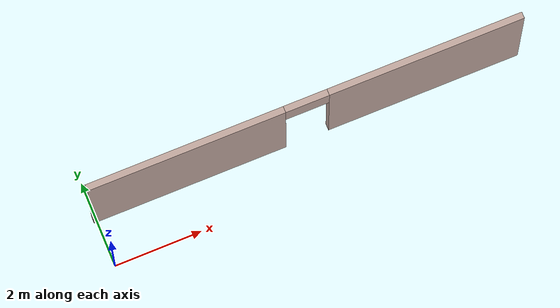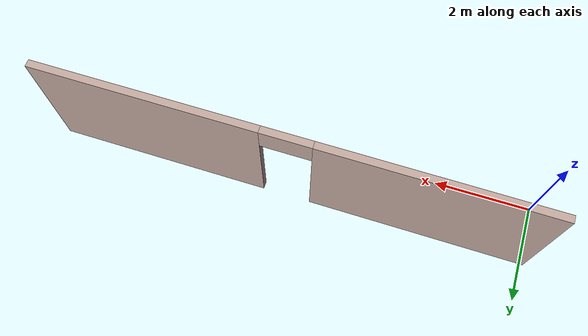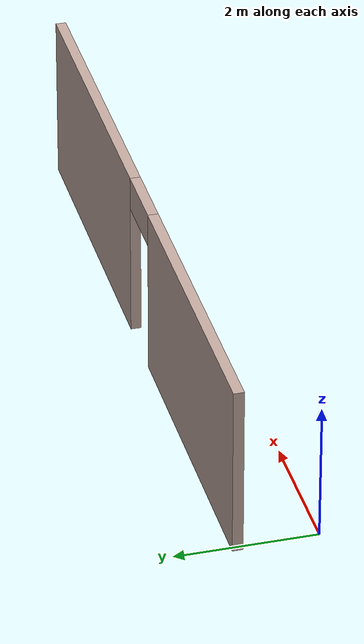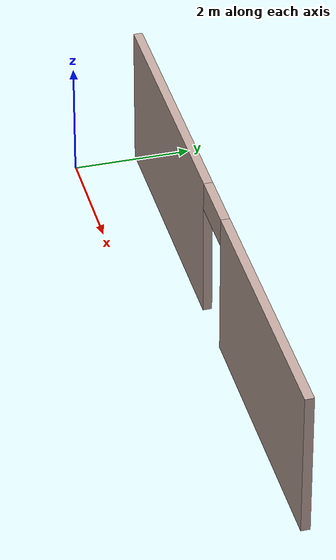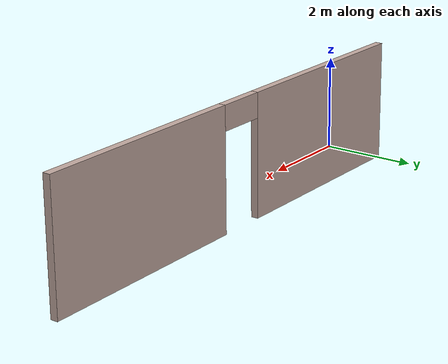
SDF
<?xml version='1.0'?>
<sdf version='1.6'>
  <model name='Awesome_wall'>
    <pose frame=''>4.925 1.14 0 0 -0 0</pose>
    <link name='Wall_11'>
      <pose frame=''>0 0 0 0 -0 0</pose>
      <visual name='Wall_11_Visual_0'>
        <pose frame=''>-2.75 0 1.25 0 -0 0</pose>
        <geometry>
          <box>
            <size>4.5 0.15 2.5</size>
          </box>
        </geometry>
        <material>
          <script>
            <uri>file://media/materials/scripts/gazebo.material</uri>
            <name>Gazebo/Grey</name>
          </script>
          <ambient>0.760784 0.662745 0.627451 1</ambient>
        </material>
        <meta>
          <layer>0</layer>
        </meta>
      </visual>
      <collision name='Wall_11_Collision_0'>
        <geometry>
          <box>
            <size>4.5 0.15 2.5</size>
          </box>
        </geometry>
        <pose frame=''>-2.75 0 1.25 0 -0 0</pose>
      </collision>
      <visual name='Wall_11_Visual_1'>
        <pose frame=''>2.75 0 1.25 0 -0 0</pose>
        <geometry>
          <box>
            <size>4.5 0.15 2.5</size>
          </box>
        </geometry>
        <material>
          <script>
            <uri>file://media/materials/scripts/gazebo.material</uri>
            <name>Gazebo/Grey</name>
          </script>
          <ambient>0.760784 0.662745 0.627451 1</ambient>
        </material>
        <meta>
          <layer>0</layer>
        </meta>
      </visual>
      <collision name='Wall_11_Collision_1'>
        <geometry>
          <box>
            <size>4.5 0.15 2.5</size>
          </box>
        </geometry>
        <pose frame=''>2.75 0 1.25 0 -0 0</pose>
      </collision>
      <visual name='Wall_11_Visual_2'>
        <pose frame=''>0 0 2.25 0 -0 0</pose>
        <geometry>
          <box>
            <size>1 0.15 0.5</size>
          </box>
        </geometry>
        <material>
          <script>
            <uri>file://media/materials/scripts/gazebo.material</uri>
            <name>Gazebo/Grey</name>
          </script>
          <ambient>0.760784 0.662745 0.627451 1</ambient>
        </material>
        <meta>
          <layer>0</layer>
        </meta>
      </visual>
      <collision name='Wall_11_Collision_2'>
        <geometry>
          <box>
            <size>1 0.15 0.5</size>
          </box>
        </geometry>
        <pose frame=''>0 0 2.25 0 -0 0</pose>
      </collision>
    </link>
    <static>1</static>
  </model>
</sdf>
